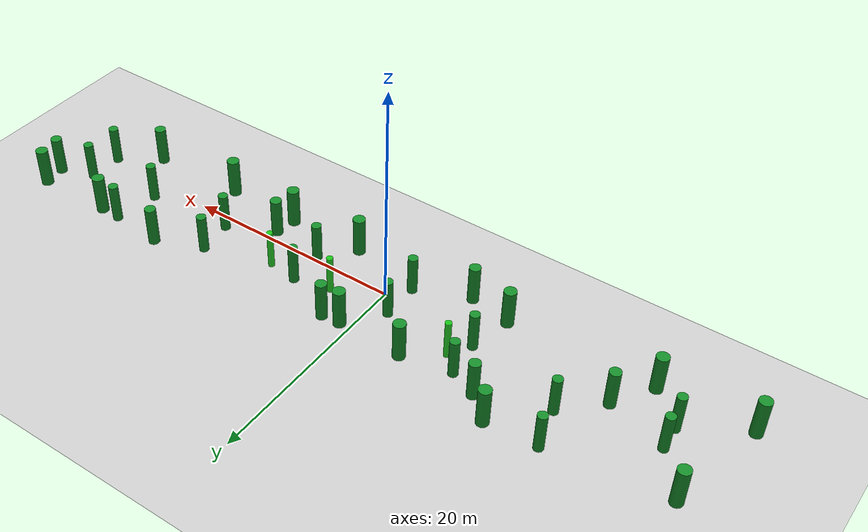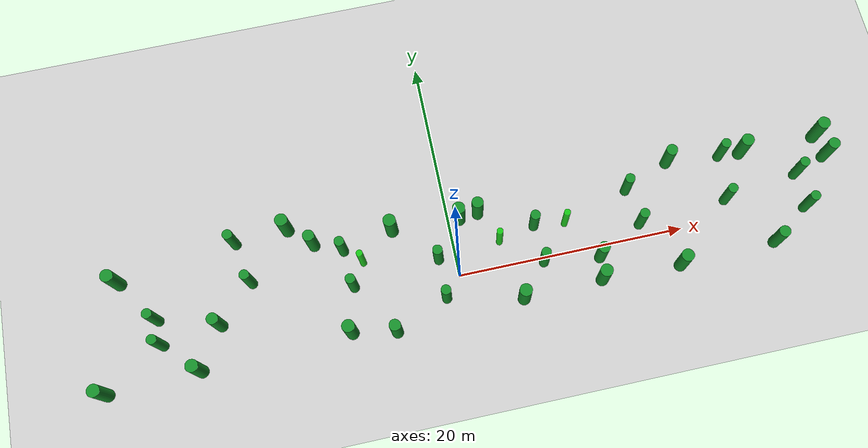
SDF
<?xml version="1.0"?>
<sdf version="1.6">
  <world name="event_generated_temporal">
    <include><uri>model://sun</uri></include>
    <include><uri>model://ground_plane</uri></include>
    <physics name="default_physics" default="0" type="ode">
      <gravity>0 0 -9.8066</gravity>
      <ode>
        <solver><type>quick</type><iters>10</iters><sor>1.3</sor></solver>
        <constraints>
          <cfm>0</cfm>
          <erp>0.2</erp>
          <contact_max_correcting_vel>100</contact_max_correcting_vel>
          <contact_surface_layer>0.001</contact_surface_layer>
        </constraints>
      </ode>
      <max_step_size>0.004</max_step_size>
      <real_time_factor>1</real_time_factor>
      <real_time_update_rate>250</real_time_update_rate>
    </physics>
    <model name="long_forest_cylinder_00">
      <static>true</static>
      <pose>-26.090 1.580 1.800 0 0 0</pose>
      <link name="link">
        <collision name="collision">
          <geometry><cylinder><radius>0.430</radius><length>3.600</length></cylinder></geometry>
        </collision>
        <visual name="visual">
          <geometry><cylinder><radius>0.430</radius><length>3.600</length></cylinder></geometry>
          <material><ambient>0.08 0.55 0.16 0.92</ambient><diffuse>0.08 0.55 0.16 0.92</diffuse></material>
        </visual>
      </link>
    </model>
    <model name="long_forest_cylinder_01">
      <static>true</static>
      <pose>-25.940 -0.650 1.800 0 0 0</pose>
      <link name="link">
        <collision name="collision">
          <geometry><cylinder><radius>0.430</radius><length>3.600</length></cylinder></geometry>
        </collision>
        <visual name="visual">
          <geometry><cylinder><radius>0.430</radius><length>3.600</length></cylinder></geometry>
          <material><ambient>0.08 0.55 0.16 0.92</ambient><diffuse>0.08 0.55 0.16 0.92</diffuse></material>
        </visual>
      </link>
    </model>
    <model name="long_forest_cylinder_02">
      <static>true</static>
      <pose>-18.650 6.900 1.800 0 0 0</pose>
      <link name="link">
        <collision name="collision">
          <geometry><cylinder><radius>0.430</radius><length>3.600</length></cylinder></geometry>
        </collision>
        <visual name="visual">
          <geometry><cylinder><radius>0.430</radius><length>3.600</length></cylinder></geometry>
          <material><ambient>0.08 0.55 0.16 0.92</ambient><diffuse>0.08 0.55 0.16 0.92</diffuse></material>
        </visual>
      </link>
    </model>
    <model name="long_forest_cylinder_03">
      <static>true</static>
      <pose>-17.750 3.130 1.800 0 0 0</pose>
      <link name="link">
        <collision name="collision">
          <geometry><cylinder><radius>0.430</radius><length>3.600</length></cylinder></geometry>
        </collision>
        <visual name="visual">
          <geometry><cylinder><radius>0.430</radius><length>3.600</length></cylinder></geometry>
          <material><ambient>0.08 0.55 0.16 0.92</ambient><diffuse>0.08 0.55 0.16 0.92</diffuse></material>
        </visual>
      </link>
    </model>
    <model name="long_forest_cylinder_04">
      <static>true</static>
      <pose>-9.500 4.290 1.800 0 0 0</pose>
      <link name="link">
        <collision name="collision">
          <geometry><cylinder><radius>0.430</radius><length>3.600</length></cylinder></geometry>
        </collision>
        <visual name="visual">
          <geometry><cylinder><radius>0.430</radius><length>3.600</length></cylinder></geometry>
          <material><ambient>0.08 0.55 0.16 0.92</ambient><diffuse>0.08 0.55 0.16 0.92</diffuse></material>
        </visual>
      </link>
    </model>
    <model name="long_forest_cylinder_05">
      <static>true</static>
      <pose>-9.150 0.900 1.800 0 0 0</pose>
      <link name="link">
        <collision name="collision">
          <geometry><cylinder><radius>0.430</radius><length>3.600</length></cylinder></geometry>
        </collision>
        <visual name="visual">
          <geometry><cylinder><radius>0.430</radius><length>3.600</length></cylinder></geometry>
          <material><ambient>0.08 0.55 0.16 0.92</ambient><diffuse>0.08 0.55 0.16 0.92</diffuse></material>
        </visual>
      </link>
    </model>
    <model name="long_forest_cylinder_06">
      <static>true</static>
      <pose>-1.510 1.770 1.800 0 0 0</pose>
      <link name="link">
        <collision name="collision">
          <geometry><cylinder><radius>0.430</radius><length>3.600</length></cylinder></geometry>
        </collision>
        <visual name="visual">
          <geometry><cylinder><radius>0.430</radius><length>3.600</length></cylinder></geometry>
          <material><ambient>0.08 0.55 0.16 0.92</ambient><diffuse>0.08 0.55 0.16 0.92</diffuse></material>
        </visual>
      </link>
    </model>
    <model name="long_forest_cylinder_07">
      <static>true</static>
      <pose>-1.510 -1.750 1.800 0 0 0</pose>
      <link name="link">
        <collision name="collision">
          <geometry><cylinder><radius>0.430</radius><length>3.600</length></cylinder></geometry>
        </collision>
        <visual name="visual">
          <geometry><cylinder><radius>0.430</radius><length>3.600</length></cylinder></geometry>
          <material><ambient>0.08 0.55 0.16 0.92</ambient><diffuse>0.08 0.55 0.16 0.92</diffuse></material>
        </visual>
      </link>
    </model>
    <model name="long_forest_cylinder_08">
      <static>true</static>
      <pose>7.280 3.000 1.800 0 0 0</pose>
      <link name="link">
        <collision name="collision">
          <geometry><cylinder><radius>0.430</radius><length>3.600</length></cylinder></geometry>
        </collision>
        <visual name="visual">
          <geometry><cylinder><radius>0.430</radius><length>3.600</length></cylinder></geometry>
          <material><ambient>0.08 0.55 0.16 0.92</ambient><diffuse>0.08 0.55 0.16 0.92</diffuse></material>
        </visual>
      </link>
    </model>
    <model name="long_forest_cylinder_09">
      <static>true</static>
      <pose>7.420 -0.400 1.800 0 0 0</pose>
      <link name="link">
        <collision name="collision">
          <geometry><cylinder><radius>0.430</radius><length>3.600</length></cylinder></geometry>
        </collision>
        <visual name="visual">
          <geometry><cylinder><radius>0.430</radius><length>3.600</length></cylinder></geometry>
          <material><ambient>0.08 0.55 0.16 0.92</ambient><diffuse>0.08 0.55 0.16 0.92</diffuse></material>
        </visual>
      </link>
    </model>
    <model name="long_forest_cylinder_10">
      <static>true</static>
      <pose>16.030 4.450 1.800 0 0 0</pose>
      <link name="link">
        <collision name="collision">
          <geometry><cylinder><radius>0.430</radius><length>3.600</length></cylinder></geometry>
        </collision>
        <visual name="visual">
          <geometry><cylinder><radius>0.430</radius><length>3.600</length></cylinder></geometry>
          <material><ambient>0.08 0.55 0.16 0.92</ambient><diffuse>0.08 0.55 0.16 0.92</diffuse></material>
        </visual>
      </link>
    </model>
    <model name="long_forest_cylinder_11">
      <static>true</static>
      <pose>16.440 1.150 1.800 0 0 0</pose>
      <link name="link">
        <collision name="collision">
          <geometry><cylinder><radius>0.430</radius><length>3.600</length></cylinder></geometry>
        </collision>
        <visual name="visual">
          <geometry><cylinder><radius>0.430</radius><length>3.600</length></cylinder></geometry>
          <material><ambient>0.08 0.55 0.16 0.92</ambient><diffuse>0.08 0.55 0.16 0.92</diffuse></material>
        </visual>
      </link>
    </model>
    <model name="long_forest_cylinder_12">
      <static>true</static>
      <pose>25.060 5.800 1.800 0 0 0</pose>
      <link name="link">
        <collision name="collision">
          <geometry><cylinder><radius>0.430</radius><length>3.600</length></cylinder></geometry>
        </collision>
        <visual name="visual">
          <geometry><cylinder><radius>0.430</radius><length>3.600</length></cylinder></geometry>
          <material><ambient>0.08 0.55 0.16 0.92</ambient><diffuse>0.08 0.55 0.16 0.92</diffuse></material>
        </visual>
      </link>
    </model>
    <model name="long_forest_cylinder_13">
      <static>true</static>
      <pose>24.440 1.710 1.800 0 0 0</pose>
      <link name="link">
        <collision name="collision">
          <geometry><cylinder><radius>0.430</radius><length>3.600</length></cylinder></geometry>
        </collision>
        <visual name="visual">
          <geometry><cylinder><radius>0.430</radius><length>3.600</length></cylinder></geometry>
          <material><ambient>0.08 0.55 0.16 0.92</ambient><diffuse>0.08 0.55 0.16 0.92</diffuse></material>
        </visual>
      </link>
    </model>
    <model name="long_forest_cylinder_14">
      <static>true</static>
      <pose>31.230 2.690 1.800 0 0 0</pose>
      <link name="link">
        <collision name="collision">
          <geometry><cylinder><radius>0.430</radius><length>3.600</length></cylinder></geometry>
        </collision>
        <visual name="visual">
          <geometry><cylinder><radius>0.430</radius><length>3.600</length></cylinder></geometry>
          <material><ambient>0.08 0.55 0.16 0.92</ambient><diffuse>0.08 0.55 0.16 0.92</diffuse></material>
        </visual>
      </link>
    </model>
    <model name="long_forest_cylinder_15">
      <static>true</static>
      <pose>31.160 -0.450 1.800 0 0 0</pose>
      <link name="link">
        <collision name="collision">
          <geometry><cylinder><radius>0.430</radius><length>3.600</length></cylinder></geometry>
        </collision>
        <visual name="visual">
          <geometry><cylinder><radius>0.430</radius><length>3.600</length></cylinder></geometry>
          <material><ambient>0.08 0.55 0.16 0.92</ambient><diffuse>0.08 0.55 0.16 0.92</diffuse></material>
        </visual>
      </link>
    </model>
    <model name="long_forest_cylinder_16">
      <static>true</static>
      <pose>-20.850 0.000 1.800 0 0 0</pose>
      <link name="link">
        <collision name="collision">
          <geometry><cylinder><radius>0.500</radius><length>3.600</length></cylinder></geometry>
        </collision>
        <visual name="visual">
          <geometry><cylinder><radius>0.500</radius><length>3.600</length></cylinder></geometry>
          <material><ambient>0.08 0.55 0.16 0.92</ambient><diffuse>0.08 0.55 0.16 0.92</diffuse></material>
        </visual>
      </link>
    </model>
    <model name="long_forest_cylinder_17">
      <static>true</static>
      <pose>-11.950 5.340 1.800 0 0 0</pose>
      <link name="link">
        <collision name="collision">
          <geometry><cylinder><radius>0.500</radius><length>3.600</length></cylinder></geometry>
        </collision>
        <visual name="visual">
          <geometry><cylinder><radius>0.500</radius><length>3.600</length></cylinder></geometry>
          <material><ambient>0.08 0.55 0.16 0.92</ambient><diffuse>0.08 0.55 0.16 0.92</diffuse></material>
        </visual>
      </link>
    </model>
    <model name="long_forest_cylinder_18">
      <static>true</static>
      <pose>-6.230 -3.750 1.800 0 0 0</pose>
      <link name="link">
        <collision name="collision">
          <geometry><cylinder><radius>0.500</radius><length>3.600</length></cylinder></geometry>
        </collision>
        <visual name="visual">
          <geometry><cylinder><radius>0.500</radius><length>3.600</length></cylinder></geometry>
          <material><ambient>0.08 0.55 0.16 0.92</ambient><diffuse>0.08 0.55 0.16 0.92</diffuse></material>
        </visual>
      </link>
    </model>
    <model name="long_forest_cylinder_19">
      <static>true</static>
      <pose>2.690 5.150 1.800 0 0 0</pose>
      <link name="link">
        <collision name="collision">
          <geometry><cylinder><radius>0.500</radius><length>3.600</length></cylinder></geometry>
        </collision>
        <visual name="visual">
          <geometry><cylinder><radius>0.500</radius><length>3.600</length></cylinder></geometry>
          <material><ambient>0.08 0.55 0.16 0.92</ambient><diffuse>0.08 0.55 0.16 0.92</diffuse></material>
        </visual>
      </link>
    </model>
    <model name="long_forest_cylinder_20">
      <static>true</static>
      <pose>12.310 -1.020 1.800 0 0 0</pose>
      <link name="link">
        <collision name="collision">
          <geometry><cylinder><radius>0.500</radius><length>3.600</length></cylinder></geometry>
        </collision>
        <visual name="visual">
          <geometry><cylinder><radius>0.500</radius><length>3.600</length></cylinder></geometry>
          <material><ambient>0.08 0.55 0.16 0.92</ambient><diffuse>0.08 0.55 0.16 0.92</diffuse></material>
        </visual>
      </link>
    </model>
    <model name="long_forest_cylinder_21">
      <static>true</static>
      <pose>20.270 6.210 1.800 0 0 0</pose>
      <link name="link">
        <collision name="collision">
          <geometry><cylinder><radius>0.500</radius><length>3.600</length></cylinder></geometry>
        </collision>
        <visual name="visual">
          <geometry><cylinder><radius>0.500</radius><length>3.600</length></cylinder></geometry>
          <material><ambient>0.08 0.55 0.16 0.92</ambient><diffuse>0.08 0.55 0.16 0.92</diffuse></material>
        </visual>
      </link>
    </model>
    <model name="long_forest_cylinder_22">
      <static>true</static>
      <pose>27.610 -2.950 1.800 0 0 0</pose>
      <link name="link">
        <collision name="collision">
          <geometry><cylinder><radius>0.500</radius><length>3.600</length></cylinder></geometry>
        </collision>
        <visual name="visual">
          <geometry><cylinder><radius>0.500</radius><length>3.600</length></cylinder></geometry>
          <material><ambient>0.08 0.55 0.16 0.92</ambient><diffuse>0.08 0.55 0.16 0.92</diffuse></material>
        </visual>
      </link>
    </model>
    <model name="long_forest_cylinder_23">
      <static>true</static>
      <pose>34.270 3.780 1.800 0 0 0</pose>
      <link name="link">
        <collision name="collision">
          <geometry><cylinder><radius>0.500</radius><length>3.600</length></cylinder></geometry>
        </collision>
        <visual name="visual">
          <geometry><cylinder><radius>0.500</radius><length>3.600</length></cylinder></geometry>
          <material><ambient>0.08 0.55 0.16 0.92</ambient><diffuse>0.08 0.55 0.16 0.92</diffuse></material>
        </visual>
      </link>
    </model>
    <model name="long_forest_cylinder_24">
      <static>true</static>
      <pose>-31.000 -3.800 1.800 0 0 0</pose>
      <link name="link">
        <collision name="collision">
          <geometry><cylinder><radius>0.550</radius><length>3.600</length></cylinder></geometry>
        </collision>
        <visual name="visual">
          <geometry><cylinder><radius>0.550</radius><length>3.600</length></cylinder></geometry>
          <material><ambient>0.08 0.55 0.16 0.92</ambient><diffuse>0.08 0.55 0.16 0.92</diffuse></material>
        </visual>
      </link>
    </model>
    <model name="long_forest_cylinder_25">
      <static>true</static>
      <pose>-29.000 5.500 1.800 0 0 0</pose>
      <link name="link">
        <collision name="collision">
          <geometry><cylinder><radius>0.550</radius><length>3.600</length></cylinder></geometry>
        </collision>
        <visual name="visual">
          <geometry><cylinder><radius>0.550</radius><length>3.600</length></cylinder></geometry>
          <material><ambient>0.08 0.55 0.16 0.92</ambient><diffuse>0.08 0.55 0.16 0.92</diffuse></material>
        </visual>
      </link>
    </model>
    <model name="long_forest_cylinder_26">
      <static>true</static>
      <pose>-23.000 -3.500 1.800 0 0 0</pose>
      <link name="link">
        <collision name="collision">
          <geometry><cylinder><radius>0.550</radius><length>3.600</length></cylinder></geometry>
        </collision>
        <visual name="visual">
          <geometry><cylinder><radius>0.550</radius><length>3.600</length></cylinder></geometry>
          <material><ambient>0.08 0.55 0.16 0.92</ambient><diffuse>0.08 0.55 0.16 0.92</diffuse></material>
        </visual>
      </link>
    </model>
    <model name="long_forest_cylinder_27">
      <static>true</static>
      <pose>-14.000 7.200 1.800 0 0 0</pose>
      <link name="link">
        <collision name="collision">
          <geometry><cylinder><radius>0.550</radius><length>3.600</length></cylinder></geometry>
        </collision>
        <visual name="visual">
          <geometry><cylinder><radius>0.550</radius><length>3.600</length></cylinder></geometry>
          <material><ambient>0.08 0.55 0.16 0.92</ambient><diffuse>0.08 0.55 0.16 0.92</diffuse></material>
        </visual>
      </link>
    </model>
    <model name="long_forest_cylinder_28">
      <static>true</static>
      <pose>-10.000 -3.000 1.800 0 0 0</pose>
      <link name="link">
        <collision name="collision">
          <geometry><cylinder><radius>0.550</radius><length>3.600</length></cylinder></geometry>
        </collision>
        <visual name="visual">
          <geometry><cylinder><radius>0.550</radius><length>3.600</length></cylinder></geometry>
          <material><ambient>0.08 0.55 0.16 0.92</ambient><diffuse>0.08 0.55 0.16 0.92</diffuse></material>
        </visual>
      </link>
    </model>
    <model name="long_forest_cylinder_29">
      <static>true</static>
      <pose>-5.000 5.200 1.800 0 0 0</pose>
      <link name="link">
        <collision name="collision">
          <geometry><cylinder><radius>0.550</radius><length>3.600</length></cylinder></geometry>
        </collision>
        <visual name="visual">
          <geometry><cylinder><radius>0.550</radius><length>3.600</length></cylinder></geometry>
          <material><ambient>0.08 0.55 0.16 0.92</ambient><diffuse>0.08 0.55 0.16 0.92</diffuse></material>
        </visual>
      </link>
    </model>
    <model name="long_forest_cylinder_30">
      <static>true</static>
      <pose>1.000 5.000 1.800 0 0 0</pose>
      <link name="link">
        <collision name="collision">
          <geometry><cylinder><radius>0.550</radius><length>3.600</length></cylinder></geometry>
        </collision>
        <visual name="visual">
          <geometry><cylinder><radius>0.550</radius><length>3.600</length></cylinder></geometry>
          <material><ambient>0.08 0.55 0.16 0.92</ambient><diffuse>0.08 0.55 0.16 0.92</diffuse></material>
        </visual>
      </link>
    </model>
    <model name="long_forest_cylinder_31">
      <static>true</static>
      <pose>5.000 -3.200 1.800 0 0 0</pose>
      <link name="link">
        <collision name="collision">
          <geometry><cylinder><radius>0.550</radius><length>3.600</length></cylinder></geometry>
        </collision>
        <visual name="visual">
          <geometry><cylinder><radius>0.550</radius><length>3.600</length></cylinder></geometry>
          <material><ambient>0.08 0.55 0.16 0.92</ambient><diffuse>0.08 0.55 0.16 0.92</diffuse></material>
        </visual>
      </link>
    </model>
    <model name="long_forest_cylinder_32">
      <static>true</static>
      <pose>12.000 -3.000 1.800 0 0 0</pose>
      <link name="link">
        <collision name="collision">
          <geometry><cylinder><radius>0.550</radius><length>3.600</length></cylinder></geometry>
        </collision>
        <visual name="visual">
          <geometry><cylinder><radius>0.550</radius><length>3.600</length></cylinder></geometry>
          <material><ambient>0.08 0.55 0.16 0.92</ambient><diffuse>0.08 0.55 0.16 0.92</diffuse></material>
        </visual>
      </link>
    </model>
    <model name="long_forest_cylinder_33">
      <static>true</static>
      <pose>19.000 -3.200 1.800 0 0 0</pose>
      <link name="link">
        <collision name="collision">
          <geometry><cylinder><radius>0.550</radius><length>3.600</length></cylinder></geometry>
        </collision>
        <visual name="visual">
          <geometry><cylinder><radius>0.550</radius><length>3.600</length></cylinder></geometry>
          <material><ambient>0.08 0.55 0.16 0.92</ambient><diffuse>0.08 0.55 0.16 0.92</diffuse></material>
        </visual>
      </link>
    </model>
    <model name="long_forest_cylinder_34">
      <static>true</static>
      <pose>27.000 5.700 1.800 0 0 0</pose>
      <link name="link">
        <collision name="collision">
          <geometry><cylinder><radius>0.550</radius><length>3.600</length></cylinder></geometry>
        </collision>
        <visual name="visual">
          <geometry><cylinder><radius>0.550</radius><length>3.600</length></cylinder></geometry>
          <material><ambient>0.08 0.55 0.16 0.92</ambient><diffuse>0.08 0.55 0.16 0.92</diffuse></material>
        </visual>
      </link>
    </model>
    <model name="long_forest_cylinder_35">
      <static>true</static>
      <pose>34.000 5.800 1.800 0 0 0</pose>
      <link name="link">
        <collision name="collision">
          <geometry><cylinder><radius>0.550</radius><length>3.600</length></cylinder></geometry>
        </collision>
        <visual name="visual">
          <geometry><cylinder><radius>0.550</radius><length>3.600</length></cylinder></geometry>
          <material><ambient>0.08 0.55 0.16 0.92</ambient><diffuse>0.08 0.55 0.16 0.92</diffuse></material>
        </visual>
      </link>
    </model>
    <model name="event_temporal_3">
      <static>false</static>
      <pose>-7.998 2.893 1.800 0 0 0</pose>
      <link name="link">
        <gravity>false</gravity>
        <inertial>
          <mass>1.0</mass>
          <inertia>
            <ixx>0.1</ixx><ixy>0.0</ixy><ixz>0.0</ixz>
            <iyy>0.1</iyy><iyz>0.0</iyz>
            <izz>0.1</izz>
          </inertia>
        </inertial>
        <collision name="collision">
          <geometry><cylinder><radius>0.280</radius><length>3.600</length></cylinder></geometry>
        </collision>
        <visual name="visual">
          <geometry><cylinder><radius>0.280</radius><length>3.600</length></cylinder></geometry>
          <material><ambient>0 0.8 0 0.85</ambient><diffuse>0 0.8 0 0.85</diffuse></material>
        </visual>
      </link>
    </model>
    <model name="event_temporal_4">
      <static>false</static>
      <pose>4.016 2.241 1.800 0 0 0</pose>
      <link name="link">
        <gravity>false</gravity>
        <inertial>
          <mass>1.0</mass>
          <inertia>
            <ixx>0.1</ixx><ixy>0.0</ixy><ixz>0.0</ixz>
            <iyy>0.1</iyy><iyz>0.0</iyz>
            <izz>0.1</izz>
          </inertia>
        </inertial>
        <collision name="collision">
          <geometry><cylinder><radius>0.280</radius><length>3.600</length></cylinder></geometry>
        </collision>
        <visual name="visual">
          <geometry><cylinder><radius>0.280</radius><length>3.600</length></cylinder></geometry>
          <material><ambient>0 0.8 0 0.85</ambient><diffuse>0 0.8 0 0.85</diffuse></material>
        </visual>
      </link>
    </model>
    <model name="event_temporal_5">
      <static>false</static>
      <pose>9.999 2.643 1.800 0 0 0</pose>
      <link name="link">
        <gravity>false</gravity>
        <inertial>
          <mass>1.0</mass>
          <inertia>
            <ixx>0.1</ixx><ixy>0.0</ixy><ixz>0.0</ixz>
            <iyy>0.1</iyy><iyz>0.0</iyz>
            <izz>0.1</izz>
          </inertia>
        </inertial>
        <collision name="collision">
          <geometry><cylinder><radius>0.280</radius><length>3.600</length></cylinder></geometry>
        </collision>
        <visual name="visual">
          <geometry><cylinder><radius>0.280</radius><length>3.600</length></cylinder></geometry>
          <material><ambient>0 0.8 0 0.85</ambient><diffuse>0 0.8 0 0.85</diffuse></material>
        </visual>
      </link>
    </model>
  </world>
</sdf>
